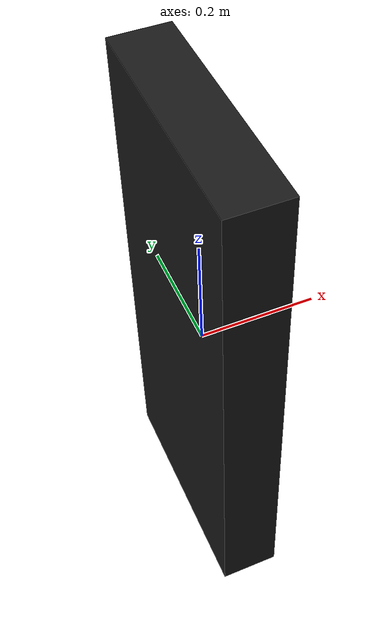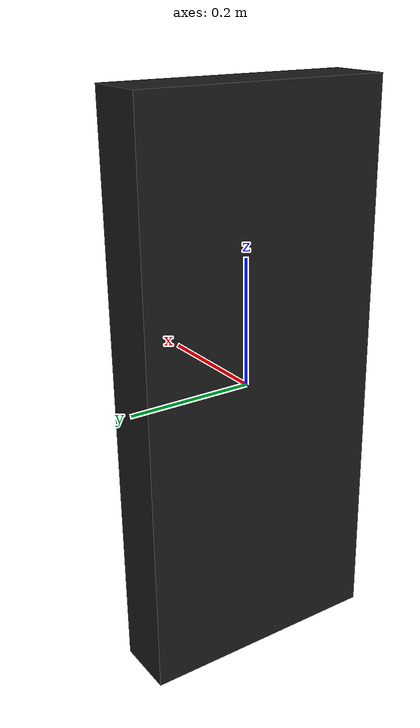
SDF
<?xml version="1.0" ?>

 <!-- Example boxes world -->
<sdf version="1.6">
  <world name="default">

    <gravity>0 0 0</gravity>

    <physics type="ignored">
      <max_step_size>0.001</max_step_size>
    </physics>

    <plugin
      filename="gz-sim-physics-system"
      name="gz::sim::systems::Physics">
    </plugin>

    <plugin
      filename="gz-sim-scene-broadcaster-system"
      name="gz::sim::systems::SceneBroadcaster">
    </plugin>

    <model name="box_0">
      <pose>0 0.0 0  0 0 0</pose>
      <link name="box_link">
      <inertial>
        <mass>10</mass>
        <inertia>
          <ixx>0.8083333333333335</ixx>
          <iyy>0.6833333333333335</iyy>
          <izz>0.14166666666666672</izz>
          <ixy>0</ixy>
          <ixz>0</ixz>
          <iyz>0</iyz>
        </inertia>
      </inertial>

        <collision name="box_collision">
        <geometry>
          <box>
            <size>0.1 0.4 0.9</size>
          </box>
        </geometry>
        </collision>

      <visual name="box_visual">
          <geometry>
            <box>
              <size>0.1 0.4 0.9</size>
            </box>
          </geometry>
          <material>
            <ambient>0.1 0.1 0.1 1</ambient>
            <diffuse>0.1 0.1 0.1 1</diffuse>
            <specular>0.01 0.01 0.01 1</specular>
          </material>
        </visual>
      </link>
      <plugin
      filename="gz-sim-set-model-state-system"
      name="gz::sim::systems::SetModelState">
        <model_state>
          <link_state name="box_link">
            <linear_velocity>-0.9 0.4 0.1</linear_velocity>
            <angular_velocity>0.5 0.0 0.0</angular_velocity>
          </link_state>
        </model_state>
     </plugin>
    </model>

  </world>
</sdf>
